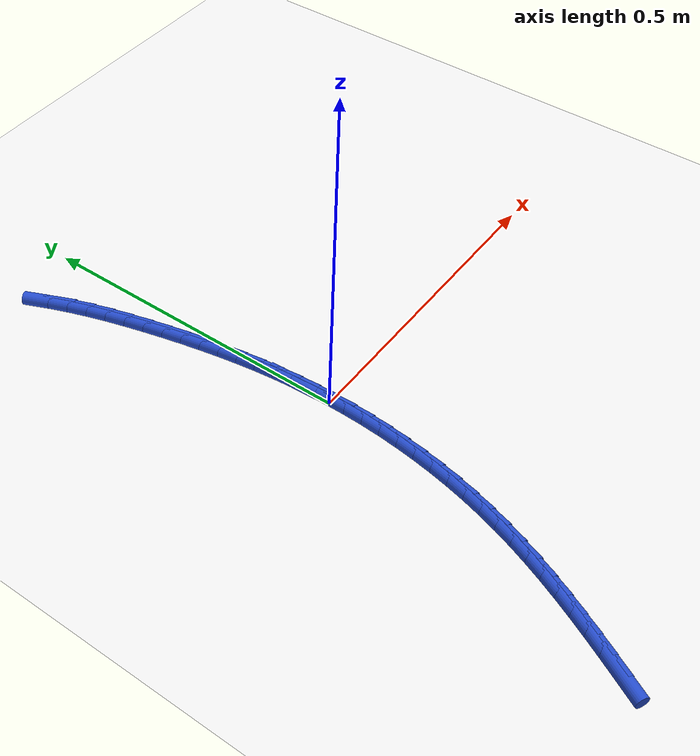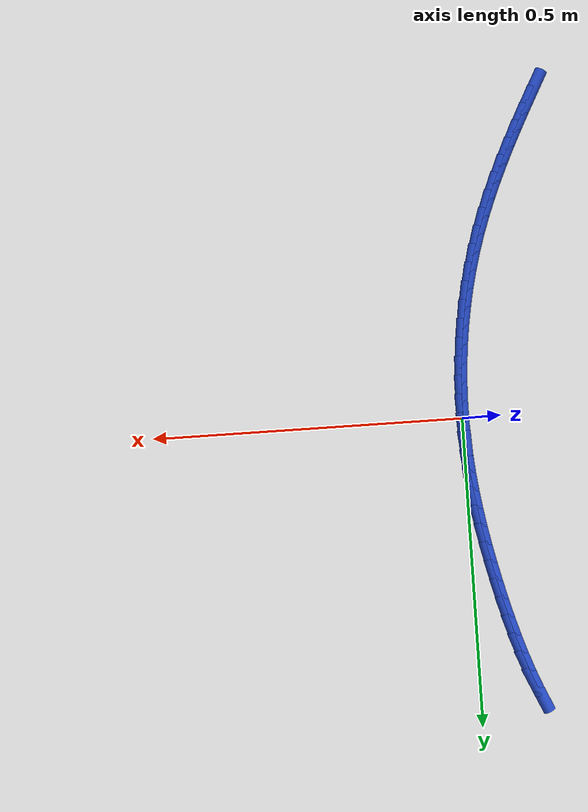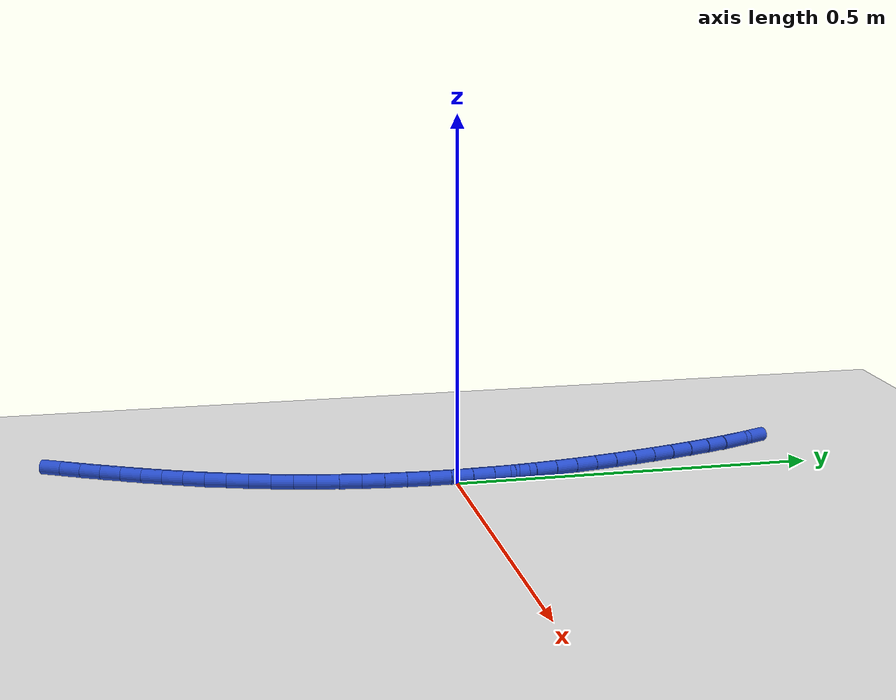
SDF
<sdf version="1.6">
 <world name="default">
  <model name="ground_plane">
   <static>1</static>
   <link name="link">
    <collision name="collision">
     <geometry><plane><normal>0 0 1</normal><size>100 100</size></plane></geometry>
     <surface><friction><ode><mu>100</mu><mu2>50</mu2></ode></friction></surface>
    </collision>
    <visual name="visual">
     <cast_shadows>0</cast_shadows>
     <geometry><plane><normal>0 0 1</normal><size>100 100</size></plane></geometry>
     <material>
      <script><uri>file://media/materials/scripts/gazebo.material</uri><name>Gazebo/WhiteGlow</name></script>
     </material>
    </visual>
   </link>
  </model>
  <model name="line">
   <link name="link_0">
    <pose>-3.469446951953614e-18 4.85722573273506e-17 0.01 0 1.57 -1.5418332146010414</pose>
    <collision name="collision">
     <geometry><cylinder><radius>0.01</radius><length>0.08</length></cylinder></geometry>
    </collision>
    <visual name="visual">
     <material>
      <script><name>Gazebo/Blue</name><uri>file://media/materials/scripts/gazebo.material</uri></script>
     </material>
     <geometry><cylinder><radius>0.01</radius><length>0.08</length></cylinder></geometry>
    </visual>
   </link>
   <link name="link_1">
    <pose>-0.0008663245274264614 0.029902942262474204 0.01 0 1.57 -1.510748640837422</pose>
    <collision name="collision">
     <geometry><cylinder><radius>0.01</radius><length>0.08</length></cylinder></geometry>
    </collision>
    <visual name="visual">
     <material>
      <script><name>Gazebo/Blue</name><uri>file://media/materials/scripts/gazebo.material</uri></script>
     </material>
     <geometry><cylinder><radius>0.01</radius><length>0.08</length></cylinder></geometry>
    </visual>
   </link>
   <link name="link_2">
    <pose>-0.002657733682334742 0.05970018589120433 0.01 0 1.57 -1.4812944870312121</pose>
    <collision name="collision">
     <geometry><cylinder><radius>0.01</radius><length>0.08</length></cylinder></geometry>
    </collision>
    <visual name="visual">
     <material>
      <script><name>Gazebo/Blue</name><uri>file://media/materials/scripts/gazebo.material</uri></script>
     </material>
     <geometry><cylinder><radius>0.01</radius><length>0.08</length></cylinder></geometry>
    </visual>
   </link>
   <link name="link_3">
    <pose>-0.00532403409075659 0.08941105075678075 0.01 0 1.57 -1.4535714032352982</pose>
    <collision name="collision">
     <geometry><cylinder><radius>0.01</radius><length>0.08</length></cylinder></geometry>
    </collision>
    <visual name="visual">
     <material>
      <script><name>Gazebo/Blue</name><uri>file://media/materials/scripts/gazebo.material</uri></script>
     </material>
     <geometry><cylinder><radius>0.01</radius><length>0.08</length></cylinder></geometry>
    </visual>
   </link>
   <link name="link_4">
    <pose>-0.008815032378723749 0.11905485672979395 0.01 0 1.57 -1.4276579981320756</pose>
    <collision name="collision">
     <geometry><cylinder><radius>0.01</radius><length>0.08</length></cylinder></geometry>
    </collision>
    <visual name="visual">
     <material>
      <script><name>Gazebo/Blue</name><uri>file://media/materials/scripts/gazebo.material</uri></script>
     </material>
     <geometry><cylinder><radius>0.01</radius><length>0.08</length></cylinder></geometry>
    </visual>
   </link>
   <link name="link_5">
    <pose>-0.013080535172267971 0.14865092368083424 0.01 0 1.57 -1.4036123204927695</pose>
    <collision name="collision">
     <geometry><cylinder><radius>0.01</radius><length>0.08</length></cylinder></geometry>
    </collision>
    <visual name="visual">
     <material>
      <script><name>Gazebo/Blue</name><uri>file://media/materials/scripts/gazebo.material</uri></script>
     </material>
     <geometry><cylinder><radius>0.01</radius><length>0.08</length></cylinder></geometry>
    </visual>
   </link>
   <link name="link_6">
    <pose>-0.018070349097420984 0.178218571480492 0.01 0 1.57 -1.3814738155503965</pose>
    <collision name="collision">
     <geometry><cylinder><radius>0.01</radius><length>0.08</length></cylinder></geometry>
    </collision>
    <visual name="visual">
     <material>
      <script><name>Gazebo/Blue</name><uri>file://media/materials/scripts/gazebo.material</uri></script>
     </material>
     <geometry><cylinder><radius>0.01</radius><length>0.08</length></cylinder></geometry>
    </visual>
   </link>
   <link name="link_7">
    <pose>-0.023734280780214556 0.20777711999935763 0.01 0 1.57 -1.36126556449081</pose>
    <collision name="collision">
     <geometry><cylinder><radius>0.01</radius><length>0.08</length></cylinder></geometry>
    </collision>
    <visual name="visual">
     <material>
      <script><name>Gazebo/Blue</name><uri>file://media/materials/scripts/gazebo.material</uri></script>
     </material>
     <geometry><cylinder><radius>0.01</radius><length>0.08</length></cylinder></geometry>
    </visual>
   </link>
   <link name="link_8">
    <pose>-0.030022136846680418 0.23734588910802162 0.01 0 1.57 -1.34299663909323</pose>
    <collision name="collision">
     <geometry><cylinder><radius>0.01</radius><length>0.08</length></cylinder></geometry>
    </collision>
    <visual name="visual">
     <material>
      <script><name>Gazebo/Blue</name><uri>file://media/materials/scripts/gazebo.material</uri></script>
     </material>
     <geometry><cylinder><radius>0.01</radius><length>0.08</length></cylinder></geometry>
    </visual>
   </link>
   <link name="link_9">
    <pose>-0.03688372392285033 0.2669441986770742 0.01 0 1.57 -1.326536964211542</pose>
    <collision name="collision">
     <geometry><cylinder><radius>0.01</radius><length>0.08</length></cylinder></geometry>
    </collision>
    <visual name="visual">
     <material>
      <script><name>Gazebo/Blue</name><uri>file://media/materials/scripts/gazebo.material</uri></script>
     </material>
     <geometry><cylinder><radius>0.01</radius><length>0.08</length></cylinder></geometry>
    </visual>
   </link>
   <link name="link_10">
    <pose>-0.04427206447080453 0.29658816701202956 0.01 0 1.57 -1.3089412721092473</pose>
    <collision name="collision">
     <geometry><cylinder><radius>0.01</radius><length>0.08</length></cylinder></geometry>
    </collision>
    <visual name="visual">
     <material>
      <script><name>Gazebo/Blue</name><uri>file://media/materials/scripts/gazebo.material</uri></script>
     </material>
     <geometry><cylinder><radius>0.01</radius><length>0.08</length></cylinder></geometry>
    </visual>
   </link>
   <link name="link_11">
    <pose>-0.052213819215632964 0.3262206009412094 0.01 0 1.57 -1.2871938052462488</pose>
    <collision name="collision">
     <geometry><cylinder><radius>0.01</radius><length>0.08</length></cylinder></geometry>
    </collision>
    <visual name="visual">
     <material>
      <script><name>Gazebo/Blue</name><uri>file://media/materials/scripts/gazebo.material</uri></script>
     </material>
     <geometry><cylinder><radius>0.01</radius><length>0.08</length></cylinder></geometry>
    </visual>
   </link>
   <link name="link_12">
    <pose>-0.06080910650710917 0.35571117565244675 0.01 0 1.57 -1.2609926035860026</pose>
    <collision name="collision">
     <geometry><cylinder><radius>0.01</radius><length>0.08</length></cylinder></geometry>
    </collision>
    <visual name="visual">
     <material>
      <script><name>Gazebo/Blue</name><uri>file://media/materials/scripts/gazebo.material</uri></script>
     </material>
     <geometry><cylinder><radius>0.01</radius><length>0.08</length></cylinder></geometry>
    </visual>
   </link>
   <link name="link_13">
    <pose>-0.07016122440332159 0.38492640073590756 0.01 0 1.57 -1.2301064240585315</pose>
    <collision name="collision">
     <geometry><cylinder><radius>0.01</radius><length>0.08</length></cylinder></geometry>
    </collision>
    <visual name="visual">
     <material>
      <script><name>Gazebo/Blue</name><uri>file://media/materials/scripts/gazebo.material</uri></script>
     </material>
     <geometry><cylinder><radius>0.01</radius><length>0.08</length></cylinder></geometry>
    </visual>
   </link>
   <link name="link_14">
    <pose>-0.08037347096235874 0.41373278578175765 0.01 0 1.57 -1.1942597239519621</pose>
    <collision name="collision">
     <geometry><cylinder><radius>0.01</radius><length>0.08</length></cylinder></geometry>
    </collision>
    <visual name="visual">
     <material>
      <script><name>Gazebo/Blue</name><uri>file://media/materials/scripts/gazebo.material</uri></script>
     </material>
     <geometry><cylinder><radius>0.01</radius><length>0.08</length></cylinder></geometry>
    </visual>
   </link>
   <link name="link_15">
    <pose>-0.09154914424230909 0.44199684038016307 0.01 0 1.57 -1.1531484295796557</pose>
    <collision name="collision">
     <geometry><cylinder><radius>0.01</radius><length>0.08</length></cylinder></geometry>
    </collision>
    <visual name="visual">
     <material>
      <script><name>Gazebo/Blue</name><uri>file://media/materials/scripts/gazebo.material</uri></script>
     </material>
     <geometry><cylinder><radius>0.01</radius><length>0.08</length></cylinder></geometry>
    </visual>
   </link>
   <link name="link_202">
    <pose>-0.1441260297311228 -0.5137948880353982 0.01 0 1.57 1.0803838201361329</pose>
    <collision name="collision">
     <geometry><cylinder><radius>0.01</radius><length>0.08</length></cylinder></geometry>
    </collision>
    <visual name="visual">
     <material>
      <script><name>Gazebo/Blue</name><uri>file://media/materials/scripts/gazebo.material</uri></script>
     </material>
     <geometry><cylinder><radius>0.01</radius><length>0.08</length></cylinder></geometry>
    </visual>
   </link>
   <link name="link_203">
    <pose>-0.12979967631855788 -0.48696239700946986 0.01 0 1.57 1.0919906459996527</pose>
    <collision name="collision">
     <geometry><cylinder><radius>0.01</radius><length>0.08</length></cylinder></geometry>
    </collision>
    <visual name="visual">
     <material>
      <script><name>Gazebo/Blue</name><uri>file://media/materials/scripts/gazebo.material</uri></script>
     </material>
     <geometry><cylinder><radius>0.01</radius><length>0.08</length></cylinder></geometry>
    </visual>
   </link>
   <link name="link_204">
    <pose>-0.11587353106455255 -0.46013459400482537 0.01 0 1.57 1.106959930060899</pose>
    <collision name="collision">
     <geometry><cylinder><radius>0.01</radius><length>0.08</length></cylinder></geometry>
    </collision>
    <visual name="visual">
     <material>
      <script><name>Gazebo/Blue</name><uri>file://media/materials/scripts/gazebo.material</uri></script>
     </material>
     <geometry><cylinder><radius>0.01</radius><length>0.08</length></cylinder></geometry>
    </visual>
   </link>
   <link name="link_205">
    <pose>-0.10242588216050692 -0.4332519851616098 0.01 0 1.57 1.125315002086054</pose>
    <collision name="collision">
     <geometry><cylinder><radius>0.01</radius><length>0.08</length></cylinder></geometry>
    </collision>
    <visual name="visual">
     <material>
      <script><name>Gazebo/Blue</name><uri>file://media/materials/scripts/gazebo.material</uri></script>
     </material>
     <geometry><cylinder><radius>0.01</radius><length>0.08</length></cylinder></geometry>
    </visual>
   </link>
   <link name="link_206">
    <pose>-0.08953501779782139 -0.40625507661996874 0.01 0 1.57 1.1470559095868451</pose>
    <collision name="collision">
     <geometry><cylinder><radius>0.01</radius><length>0.08</length></cylinder></geometry>
    </collision>
    <visual name="visual">
     <material>
      <script><name>Gazebo/Blue</name><uri>file://media/materials/scripts/gazebo.material</uri></script>
     </material>
     <geometry><cylinder><radius>0.01</radius><length>0.08</length></cylinder></geometry>
    </visual>
   </link>
   <link name="link_207">
    <pose>-0.07727922616789606 -0.3790843745200473 0.01 0 1.57 1.1721527303656842</pose>
    <collision name="collision">
     <geometry><cylinder><radius>0.01</radius><length>0.08</length></cylinder></geometry>
    </collision>
    <visual name="visual">
     <material>
      <script><name>Gazebo/Blue</name><uri>file://media/materials/scripts/gazebo.material</uri></script>
     </material>
     <geometry><cylinder><radius>0.01</radius><length>0.08</length></cylinder></geometry>
    </visual>
   </link>
   <link name="link_208">
    <pose>-0.06573679546213199 -0.35168038500199245 0.01 0 1.57 1.2005382352303067</pose>
    <collision name="collision">
     <geometry><cylinder><radius>0.01</radius><length>0.08</length></cylinder></geometry>
    </collision>
    <visual name="visual">
     <material>
      <script><name>Gazebo/Blue</name><uri>file://media/materials/scripts/gazebo.material</uri></script>
     </material>
     <geometry><cylinder><radius>0.01</radius><length>0.08</length></cylinder></geometry>
    </visual>
   </link>
   <link name="link_209">
    <pose>-0.0549860138719292 -0.323983614205949 0.01 0 1.57 1.2321004508295061</pose>
    <collision name="collision">
     <geometry><cylinder><radius>0.01</radius><length>0.08</length></cylinder></geometry>
    </collision>
    <visual name="visual">
     <material>
      <script><name>Gazebo/Blue</name><uri>file://media/materials/scripts/gazebo.material</uri></script>
     </material>
     <geometry><cylinder><radius>0.01</radius><length>0.08</length></cylinder></geometry>
    </visual>
   </link>
   <link name="link_210">
    <pose>-0.045105169588688196 -0.295934568272063 0.01 0 1.57 1.2665983923084894</pose>
    <collision name="collision">
     <geometry><cylinder><radius>0.01</radius><length>0.08</length></cylinder></geometry>
    </collision>
    <visual name="visual">
     <material>
      <script><name>Gazebo/Blue</name><uri>file://media/materials/scripts/gazebo.material</uri></script>
     </material>
     <geometry><cylinder><radius>0.01</radius><length>0.08</length></cylinder></geometry>
    </visual>
   </link>
   <link name="link_211">
    <pose>-0.0361709024654363 -0.26747622144708233 0.01 0 1.57 1.3020911921097957</pose>
    <collision name="collision">
     <geometry><cylinder><radius>0.01</radius><length>0.08</length></cylinder></geometry>
    </collision>
    <visual name="visual">
     <material>
      <script><name>Gazebo/Blue</name><uri>file://media/materials/scripts/gazebo.material</uri></script>
     </material>
     <geometry><cylinder><radius>0.01</radius><length>0.08</length></cylinder></geometry>
    </visual>
   </link>
   <link name="link_212">
    <pose>-0.02822177244045246 -0.2386085661789593 0.01 0 1.57 1.3368423717080988</pose>
    <collision name="collision">
     <geometry><cylinder><radius>0.01</radius><length>0.08</length></cylinder></geometry>
    </collision>
    <visual name="visual">
     <material>
      <script><name>Gazebo/Blue</name><uri>file://media/materials/scripts/gazebo.material</uri></script>
     </material>
     <geometry><cylinder><radius>0.01</radius><length>0.08</length></cylinder></geometry>
    </visual>
   </link>
   <link name="link_213">
    <pose>-0.021258165895633178 -0.2093887533292883 0.01 0 1.57 1.370896585187551</pose>
    <collision name="collision">
     <geometry><cylinder><radius>0.01</radius><length>0.08</length></cylinder></geometry>
    </collision>
    <visual name="visual">
     <material>
      <script><name>Gazebo/Blue</name><uri>file://media/materials/scripts/gazebo.material</uri></script>
     </material>
     <geometry><cylinder><radius>0.01</radius><length>0.08</length></cylinder></geometry>
    </visual>
   </link>
   <link name="link_214">
    <pose>-0.01527880214613895 -0.17987642990880406 0.01 0 1.57 1.404376455855734</pose>
    <collision name="collision">
     <geometry><cylinder><radius>0.01</radius><length>0.08</length></cylinder></geometry>
    </collision>
    <visual name="visual">
     <material>
      <script><name>Gazebo/Blue</name><uri>file://media/materials/scripts/gazebo.material</uri></script>
     </material>
     <geometry><cylinder><radius>0.01</radius><length>0.08</length></cylinder></geometry>
    </visual>
   </link>
   <link name="link_215">
    <pose>-0.010282400507130508 -0.1501312429282419 0.01 0 1.57 1.437404182781111</pose>
    <collision name="collision">
     <geometry><cylinder><radius>0.01</radius><length>0.08</length></cylinder></geometry>
    </collision>
    <visual name="visual">
     <material>
      <script><name>Gazebo/Blue</name><uri>file://media/materials/scripts/gazebo.material</uri></script>
     </material>
     <geometry><cylinder><radius>0.01</radius><length>0.08</length></cylinder></geometry>
    </visual>
   </link>
   <link name="link_216">
    <pose>-0.006267680293768478 -0.12021283939833653 0.01 0 1.57 1.470101739269466</pose>
    <collision name="collision">
     <geometry><cylinder><radius>0.01</radius><length>0.08</length></cylinder></geometry>
    </collision>
    <visual name="visual">
     <material>
      <script><name>Gazebo/Blue</name><uri>file://media/materials/scripts/gazebo.material</uri></script>
     </material>
     <geometry><cylinder><radius>0.01</radius><length>0.08</length></cylinder></geometry>
    </visual>
   </link>
   <link name="link_217">
    <pose>-0.003233360821213759 -0.09018086632982476 0.01 0 1.57 1.5025912259696128</pose>
    <collision name="collision">
     <geometry><cylinder><radius>0.01</radius><length>0.08</length></cylinder></geometry>
    </collision>
    <visual name="visual">
     <material>
      <script><name>Gazebo/Blue</name><uri>file://media/materials/scripts/gazebo.material</uri></script>
     </material>
     <geometry><cylinder><radius>0.01</radius><length>0.08</length></cylinder></geometry>
    </visual>
   </link>
   <link name="link_218">
    <pose>-0.0011781614046269644 -0.06009497073344129 0.01 0 1.57 1.5349953430110526</pose>
    <collision name="collision">
     <geometry><cylinder><radius>0.01</radius><length>0.08</length></cylinder></geometry>
    </collision>
    <visual name="visual">
     <material>
      <script><name>Gazebo/Blue</name><uri>file://media/materials/scripts/gazebo.material</uri></script>
     </material>
     <geometry><cylinder><radius>0.01</radius><length>0.08</length></cylinder></geometry>
    </visual>
   </link>
   <link name="link_219">
    <pose>-0.00010080135916880513 -0.030014799619921435 0.01 0 1.57 1.567437950877819</pose>
    <collision name="collision">
     <geometry><cylinder><radius>0.01</radius><length>0.08</length></cylinder></geometry>
    </collision>
    <visual name="visual">
     <material>
      <script><name>Gazebo/Blue</name><uri>file://media/materials/scripts/gazebo.material</uri></script>
     </material>
     <geometry><cylinder><radius>0.01</radius><length>0.08</length></cylinder></geometry>
    </visual>
   </link>
   <link name="link_220">
    <pose>-8.673617379884035e-18 8.326672684688674e-17 0.01 0 1.57 -1.5415479605145124</pose>
    <collision name="collision">
     <geometry><cylinder><radius>0.01</radius><length>0.08</length></cylinder></geometry>
    </collision>
    <visual name="visual">
     <material>
      <script><name>Gazebo/Blue</name><uri>file://media/materials/scripts/gazebo.material</uri></script>
     </material>
     <geometry><cylinder><radius>0.01</radius><length>0.08</length></cylinder></geometry>
    </visual>
   </link>
   <link name="link_221">
    <pose>-0.000874476642281255 0.029889781115585712 0.01 0 1.57 -1.508648998716276</pose>
    <collision name="collision">
     <geometry><cylinder><radius>0.01</radius><length>0.08</length></cylinder></geometry>
    </collision>
    <visual name="visual">
     <material>
      <script><name>Gazebo/Blue</name><uri>file://media/materials/scripts/gazebo.material</uri></script>
     </material>
     <geometry><cylinder><radius>0.01</radius><length>0.08</length></cylinder></geometry>
    </visual>
   </link>
   <link name="link_222">
    <pose>-0.002722950601173349 0.059594896716103 0.01 0 1.57 -1.525137079962593</pose>
    <collision name="collision">
     <geometry><cylinder><radius>0.01</radius><length>0.08</length></cylinder></geometry>
    </collision>
    <visual name="visual">
     <material>
      <script><name>Gazebo/Blue</name><uri>file://media/materials/scripts/gazebo.material</uri></script>
     </material>
     <geometry><cylinder><radius>0.01</radius><length>0.08</length></cylinder></geometry>
    </visual>
   </link>
  </model>
 </world>
</sdf>
